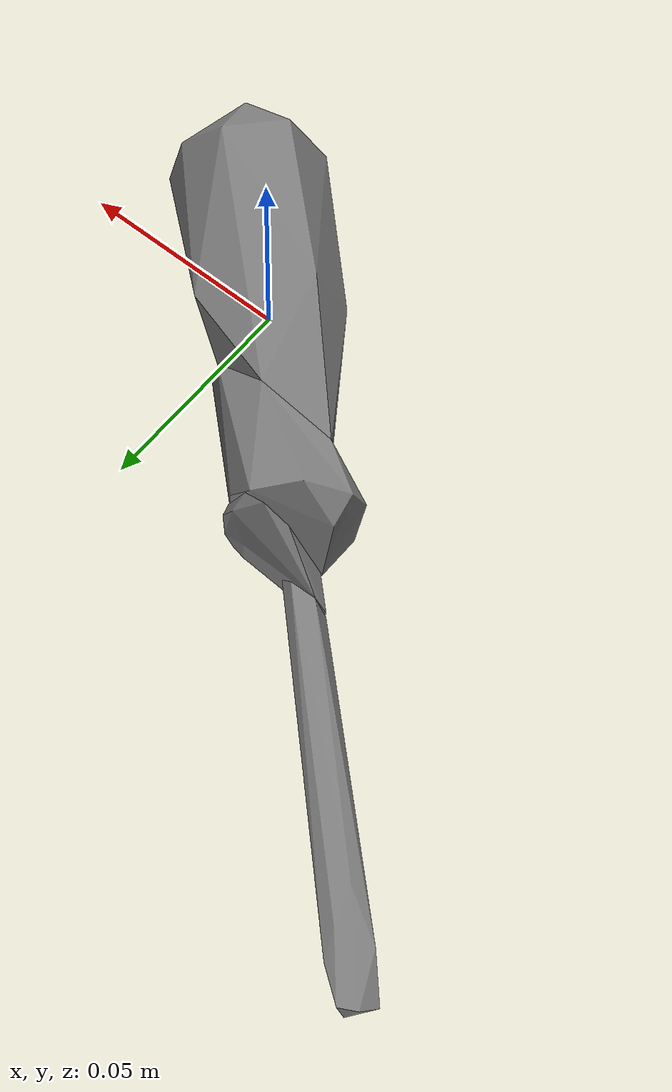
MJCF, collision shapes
<mujoco model="flat_screwdriver">
  <compiler angle="radian" />

  <asset>
    <mesh name="flat_screwdriver_visual_mesh" file="flat_screwdriver/textured.obj" />
    <mesh name="flat_screwdriver_collision_mesh_0" file="flat_screwdriver/textured_coacd_0.stl" />
    <mesh name="flat_screwdriver_collision_mesh_1" file="flat_screwdriver/textured_coacd_1.stl" />
    <mesh name="flat_screwdriver_collision_mesh_2" file="flat_screwdriver/textured_coacd_2.stl" />
    <mesh name="flat_screwdriver_collision_mesh_3" file="flat_screwdriver/textured_coacd_3.stl" />
    <texture name="flat_screwdriver_texture" type="2d" file="flat_screwdriver/texture_map.png" />
    <material name="flat_screwdriver_material" texture="flat_screwdriver_texture" />
  </asset>

  <worldbody>
    <body name="flat_screwdriver" pos="0 0 0" euler="0 0 0">
      <freejoint name="flat_screwdriver_joint" />
      <geom name="flat_screwdriver_visual_geom" type="mesh" mesh="flat_screwdriver_visual_mesh" material="flat_screwdriver_material" pos="-0.023228351441964463 0.02270556071884342 -0.016179821688211804" euler="0 0 0" contype="0" conaffinity="0" group="0" />
      <geom name="flat_screwdriver_collision_geom_0" type="mesh" mesh="flat_screwdriver_collision_mesh_0" pos="-0.023228351441964463 0.02270556071884342 -0.016179821688211804" euler="0 0 0" contype="1" conaffinity="1" group="3" />
      <geom name="flat_screwdriver_collision_geom_1" type="mesh" mesh="flat_screwdriver_collision_mesh_1" pos="-0.023228351441964463 0.02270556071884342 -0.016179821688211804" euler="0 0 0" contype="1" conaffinity="1" group="3" />
      <geom name="flat_screwdriver_collision_geom_2" type="mesh" mesh="flat_screwdriver_collision_mesh_2" pos="-0.023228351441964463 0.02270556071884342 -0.016179821688211804" euler="0 0 0" contype="1" conaffinity="1" group="3" />
      <geom name="flat_screwdriver_collision_geom_3" type="mesh" mesh="flat_screwdriver_collision_mesh_3" pos="-0.023228351441964463 0.02270556071884342 -0.016179821688211804" euler="0 0 0" contype="1" conaffinity="1" group="3" />
      <inertial pos="0 0 0" euler="0 0 0" mass="0.0984" diaginertia="0.001 0.001 0.001" />
    </body>
  </worldbody>
</mujoco>
